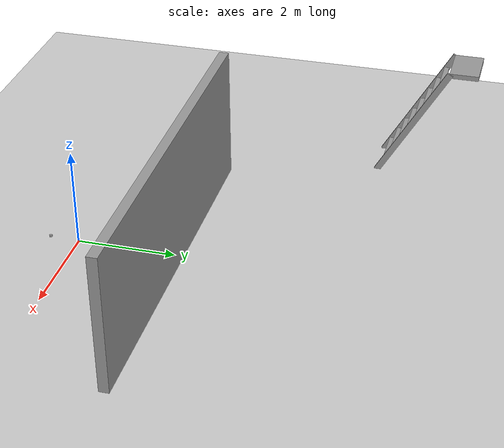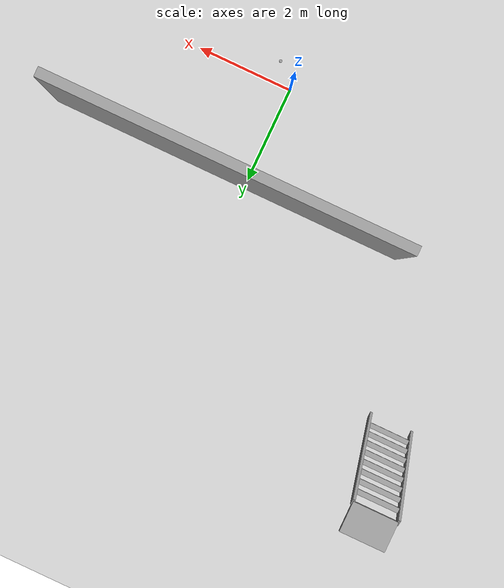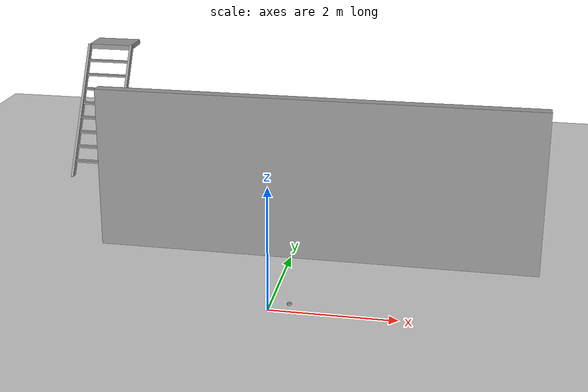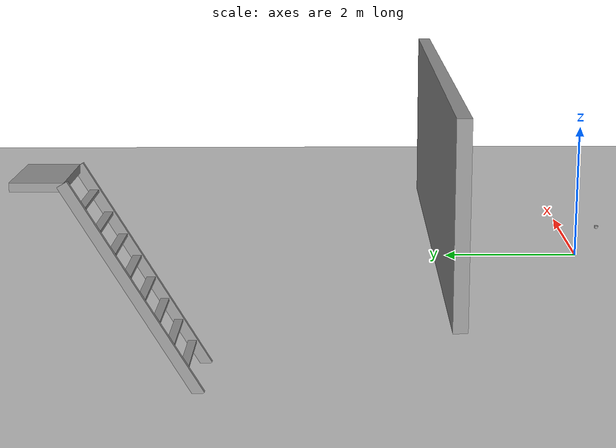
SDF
<sdf version="1.6">
 <world name="default">
  <light name="sun" type="directional">
   <pose>0 0 10 0 -0 0</pose>
   <diffuse>0.8 0.8 0.8 1</diffuse>
   <specular>0.2 0.2 0.2 1</specular>
   <attenuation>
    <range>1000</range>
    <constant>0.9</constant>
    <linear>0.01</linear>
    <quadratic>0.001</quadratic>
   </attenuation>
   <direction>-0.5 0.1 -0.9</direction>
  </light>
  <model name="ground_plane">
   <static>1</static>
   <link name="link">
    <collision name="collision">
     <geometry><plane><normal>0 0 1</normal><size>100 100</size></plane></geometry>
     <surface>
      <contact><collide_bitmask>65535</collide_bitmask></contact>
      <friction><ode><mu>100</mu><mu2>50</mu2></ode></friction>
     </surface>
    </collision>
    <visual name="visual">
     <cast_shadows>0</cast_shadows>
     <geometry><plane><normal>0 0 1</normal><size>100 100</size></plane></geometry>
     <material>
      <script><uri>file://media/materials/scripts/gazebo.material</uri><name>Gazebo/Grey</name></script>
     </material>
    </visual>
   </link>
  </model>
  <gravity>0 0 -9.8</gravity>
  <magnetic_field>6e-06 2.3e-05 -4.2e-05</magnetic_field>
  <atmosphere type="adiabatic"/>
  <physics name="default_physics" default="0" type="ode">
   <max_step_size>0.001</max_step_size>
   <real_time_factor>1</real_time_factor>
   <real_time_update_rate>1000</real_time_update_rate>
  </physics>
  <scene><ambient>0.4 0.4 0.4 1</ambient><background>0.7 0.7 0.7 1</background><shadows>1</shadows></scene>
  <spherical_coordinates>
   <surface_model>EARTH_WGS84</surface_model>
   <latitude_deg>0</latitude_deg>
   <longitude_deg>0</longitude_deg>
   <elevation>0</elevation>
   <heading_deg>0</heading_deg>
  </spherical_coordinates>
  <model name="coke">
   <link name="link_1">
    <inertial>
     <mass>5.26734e-05</mass>
     <inertia>
      <ixx>1.43663e-08</ixx>
      <ixy>0</ixy>
      <ixz>0</ixz>
      <iyy>1.43663e-08</iyy>
      <iyz>0</iyz>
      <izz>6.94095e-09</izz>
     </inertia>
    </inertial>
    <visual name="visual">
     <geometry><cylinder><radius>0.0304916</radius><length>0.0362855</length></cylinder></geometry>
     <material>
      <lighting>1</lighting>
      <script><uri>file://media/materials/scripts/gazebo.material</uri><name>Gazebo/Grey</name></script>
      <shader type="pixel"/>
      <ambient>0.3 0.3 0.3 1</ambient>
      <diffuse>0.7 0.7 0.7 1</diffuse>
      <specular>0.01 0.01 0.01 1</specular>
      <emissive>0 0 0 1</emissive>
     </material>
    </visual>
    <collision name="collision">
     <geometry><cylinder><radius>0.0304914</radius><length>0.0362858</length></cylinder></geometry>
     <surface>
      <friction>
       <ode><mu>1</mu><mu2>1</mu2><fdir1>0 0 0</fdir1><slip1>0</slip1><slip2>0</slip2></ode>
       <torsional>
        <coefficient>1</coefficient>
        <patch_radius>0</patch_radius>
        <surface_radius>0</surface_radius>
        <use_patch_radius>1</use_patch_radius>
        <ode><slip>0</slip></ode>
       </torsional>
      </friction>
      <bounce><restitution_coefficient>0</restitution_coefficient><threshold>1e+06</threshold></bounce>
      <contact>
       <collide_without_contact>0</collide_without_contact>
       <collide_without_contact_bitmask>1</collide_without_contact_bitmask>
       <collide_bitmask>1</collide_bitmask>
       <ode>
        <soft_cfm>0</soft_cfm>
        <soft_erp>0.2</soft_erp>
        <kp>1e+13</kp>
        <kd>1</kd>
        <max_vel>0.01</max_vel>
        <min_depth>0</min_depth>
       </ode>
       <bullet>
        <split_impulse>1</split_impulse>
        <split_impulse_penetration_threshold>-0.01</split_impulse_penetration_threshold>
        <soft_cfm>0</soft_cfm>
        <soft_erp>0.2</soft_erp>
        <kp>1e+13</kp>
        <kd>1</kd>
       </bullet>
      </contact>
     </surface>
    </collision>
   </link>
   <static>0</static>
   <pose>0.406329 -0.392159 0.328905 -0.000104 0.000267 -0.097956</pose>
  </model>
  <model name="grey_wall">
   <static>1</static>
   <link name="link">
    <pose>0 0 1.4 0 -0 0</pose>
    <collision name="collision"><geometry><box><size>7.5 0.2 2.8</size></box></geometry></collision>
    <visual name="visual">
     <cast_shadows>0</cast_shadows>
     <geometry><box><size>7.5 0.2 2.8</size></box></geometry>
     <material>
      <script>
       <uri>model://grey_wall/materials/scripts</uri>
       <uri>model://grey_wall/materials/textures</uri>
       <name>vrc/grey_wall</name>
      </script>
     </material>
    </visual>
   </link>
   <pose>0.385981 2.08761 0 0 -0 0</pose>
  </model>
  <model name="ladder_60deg_0rails">
   <static>1</static>
   <link name="step0">
    <pose>0 0.15396 0.266667 0 -0 0</pose>
    <inertial>
     <mass>9.75482</mass>
     <inertia>
      <ixx>0.00957124</ixx>
      <iyy>0.65963</iyy>
      <izz>0.666842</izz>
      <ixy>0</ixy>
      <ixz>0</ixz>
      <iyz>0</iyz>
     </inertia>
    </inertial>
    <collision name="collision"><geometry><box><size>0.9 0.1016 0.0381</size></box></geometry></collision>
    <visual name="visual">
     <geometry><box><size>0.9 0.1016 0.0381</size></box></geometry>
     <material>
      <script><uri>file://media/materials/scripts/gazebo.material</uri><name>Gazebo/Grey</name></script>
     </material>
    </visual>
   </link>
   <link name="step1">
    <pose>0 0.30792 0.533333 0 -0 0</pose>
    <inertial>
     <mass>9.75482</mass>
     <inertia>
      <ixx>0.00957124</ixx>
      <iyy>0.65963</iyy>
      <izz>0.666842</izz>
      <ixy>0</ixy>
      <ixz>0</ixz>
      <iyz>0</iyz>
     </inertia>
    </inertial>
    <collision name="collision"><geometry><box><size>0.9 0.1016 0.0381</size></box></geometry></collision>
    <visual name="visual">
     <geometry><box><size>0.9 0.1016 0.0381</size></box></geometry>
     <material>
      <script><uri>file://media/materials/scripts/gazebo.material</uri><name>Gazebo/Grey</name></script>
     </material>
    </visual>
   </link>
   <link name="step2">
    <pose>0 0.46188 0.8 0 -0 0</pose>
    <inertial>
     <mass>9.75482</mass>
     <inertia>
      <ixx>0.00957124</ixx>
      <iyy>0.65963</iyy>
      <izz>0.666842</izz>
      <ixy>0</ixy>
      <ixz>0</ixz>
      <iyz>0</iyz>
     </inertia>
    </inertial>
    <collision name="collision"><geometry><box><size>0.9 0.1016 0.0381</size></box></geometry></collision>
    <visual name="visual">
     <geometry><box><size>0.9 0.1016 0.0381</size></box></geometry>
     <material>
      <script><uri>file://media/materials/scripts/gazebo.material</uri><name>Gazebo/Grey</name></script>
     </material>
    </visual>
   </link>
   <link name="step3">
    <pose>0 0.61584 1.06667 0 -0 0</pose>
    <inertial>
     <mass>9.75482</mass>
     <inertia>
      <ixx>0.00957124</ixx>
      <iyy>0.65963</iyy>
      <izz>0.666842</izz>
      <ixy>0</ixy>
      <ixz>0</ixz>
      <iyz>0</iyz>
     </inertia>
    </inertial>
    <collision name="collision"><geometry><box><size>0.9 0.1016 0.0381</size></box></geometry></collision>
    <visual name="visual">
     <geometry><box><size>0.9 0.1016 0.0381</size></box></geometry>
     <material>
      <script><uri>file://media/materials/scripts/gazebo.material</uri><name>Gazebo/Grey</name></script>
     </material>
    </visual>
   </link>
   <link name="step4">
    <pose>0 0.7698 1.33333 0 -0 0</pose>
    <inertial>
     <mass>9.75482</mass>
     <inertia>
      <ixx>0.00957124</ixx>
      <iyy>0.65963</iyy>
      <izz>0.666842</izz>
      <ixy>0</ixy>
      <ixz>0</ixz>
      <iyz>0</iyz>
     </inertia>
    </inertial>
    <collision name="collision"><geometry><box><size>0.9 0.1016 0.0381</size></box></geometry></collision>
    <visual name="visual">
     <geometry><box><size>0.9 0.1016 0.0381</size></box></geometry>
     <material>
      <script><uri>file://media/materials/scripts/gazebo.material</uri><name>Gazebo/Grey</name></script>
     </material>
    </visual>
   </link>
   <link name="step5">
    <pose>0 0.92376 1.6 0 -0 0</pose>
    <inertial>
     <mass>9.75482</mass>
     <inertia>
      <ixx>0.00957124</ixx>
      <iyy>0.65963</iyy>
      <izz>0.666842</izz>
      <ixy>0</ixy>
      <ixz>0</ixz>
      <iyz>0</iyz>
     </inertia>
    </inertial>
    <collision name="collision"><geometry><box><size>0.9 0.1016 0.0381</size></box></geometry></collision>
    <visual name="visual">
     <geometry><box><size>0.9 0.1016 0.0381</size></box></geometry>
     <material>
      <script><uri>file://media/materials/scripts/gazebo.material</uri><name>Gazebo/Grey</name></script>
     </material>
    </visual>
   </link>
   <link name="step6">
    <pose>0 1.07772 1.86667 0 -0 0</pose>
    <inertial>
     <mass>9.75482</mass>
     <inertia>
      <ixx>0.00957124</ixx>
      <iyy>0.65963</iyy>
      <izz>0.666842</izz>
      <ixy>0</ixy>
      <ixz>0</ixz>
      <iyz>0</iyz>
     </inertia>
    </inertial>
    <collision name="collision"><geometry><box><size>0.9 0.1016 0.0381</size></box></geometry></collision>
    <visual name="visual">
     <geometry><box><size>0.9 0.1016 0.0381</size></box></geometry>
     <material>
      <script><uri>file://media/materials/scripts/gazebo.material</uri><name>Gazebo/Grey</name></script>
     </material>
    </visual>
   </link>
   <link name="step7">
    <pose>0 1.23168 2.13333 0 -0 0</pose>
    <inertial>
     <mass>9.75482</mass>
     <inertia>
      <ixx>0.00957124</ixx>
      <iyy>0.65963</iyy>
      <izz>0.666842</izz>
      <ixy>0</ixy>
      <ixz>0</ixz>
      <iyz>0</iyz>
     </inertia>
    </inertial>
    <collision name="collision"><geometry><box><size>0.9 0.1016 0.0381</size></box></geometry></collision>
    <visual name="visual">
     <geometry><box><size>0.9 0.1016 0.0381</size></box></geometry>
     <material>
      <script><uri>file://media/materials/scripts/gazebo.material</uri><name>Gazebo/Grey</name></script>
     </material>
    </visual>
   </link>
   <link name="landing">
    <pose>0 1.68564 2.4 0 -0 0</pose>
    <inertial>
     <mass>57.6072</mass>
     <inertia><ixx>1.73518</ixx><iyy>3.89545</iyy><izz>5.6167</izz><ixy>0</ixy><ixz>0</ixz><iyz>0</iyz></inertia>
    </inertial>
    <collision name="collision"><geometry><box><size>0.9 0.6 0.1016</size></box></geometry></collision>
    <visual name="visual">
     <geometry><box><size>0.9 0.6 0.1016</size></box></geometry>
     <material>
      <script><uri>file://media/materials/scripts/gazebo.material</uri><name>Gazebo/Grey</name></script>
     </material>
    </visual>
   </link>
   <link name="left_side_wall">
    <pose>-0.45 0.69282 1.2 1.0472 -0 0</pose>
    <collision name="collision"><geometry><box><size>0.0508 2.85128 0.13</size></box></geometry></collision>
    <visual name="visual">
     <geometry><box><size>0.0508 2.85128 0.13</size></box></geometry>
     <material>
      <script><uri>file://media/materials/scripts/gazebo.material</uri><name>Gazebo/Grey</name></script>
     </material>
    </visual>
   </link>
   <link name="right_side_wall">
    <pose>0.45 0.69282 1.2 1.0472 -0 0</pose>
    <collision name="collision"><geometry><box><size>0.0508 2.85128 0.13</size></box></geometry></collision>
    <visual name="visual">
     <geometry><box><size>0.0508 2.85128 0.13</size></box></geometry>
     <material>
      <script><uri>file://media/materials/scripts/gazebo.material</uri><name>Gazebo/Grey</name></script>
     </material>
    </visual>
   </link>
   <pose>-4.69444 5.24544 0 0 -0 0</pose>
  </model>
 </world>
</sdf>
